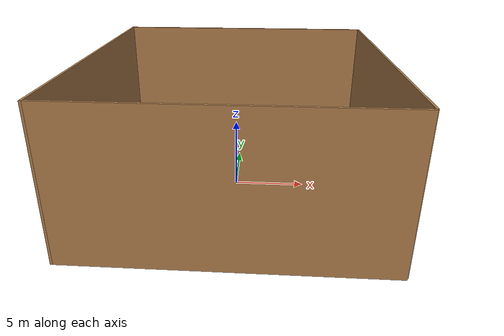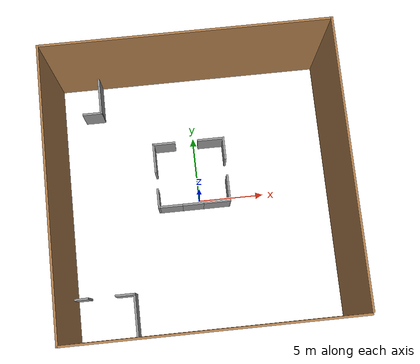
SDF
<?xml version='1.0'?>
<sdf version='1.7'>
  <model name='Untitled'>
    <pose>0.029093 0.021425 0 0 -0 0</pose>
    <link name='Wall_1'>
      <collision name='Wall_1_Collision'>
        <geometry>
          <box>
            <size>20.15 0.15 10</size>
          </box>
        </geometry>
        <pose>0 0 5 0 -0 0</pose>
      </collision>
      <visual name='Wall_1_Visual'>
        <pose>0 0 5 0 -0 0</pose>
        <geometry>
          <box>
            <size>20.15 0.15 10</size>
          </box>
        </geometry>
        <material>
          <script>
            <uri>file://media/materials/scripts/gazebo.material</uri>
            <name>Gazebo/Wood</name>
          </script>
          <ambient>0.996078 0.47451 0.0196078 1</ambient>
        </material>
        <meta>
          <layer>0</layer>
        </meta>
      </visual>
      <pose>-10.0291 -0.021425 0 0 -0 1.5708</pose>
    </link>
    <link name='Wall_10'>
      <collision name='Wall_10_Collision'>
        <geometry>
          <box>
            <size>1.5 0.15 2.5</size>
          </box>
        </geometry>
        <pose>0 0 1.25 0 -0 0</pose>
      </collision>
      <visual name='Wall_10_Visual'>
        <pose>0 0 1.25 0 -0 0</pose>
        <geometry>
          <box>
            <size>1.5 0.15 2.5</size>
          </box>
        </geometry>
        <material>
          <script>
            <uri>file://media/materials/scripts/gazebo.material</uri>
            <name>Gazebo/Grey</name>
          </script>
          <ambient>1 1 1 1</ambient>
        </material>
        <meta>
          <layer>0</layer>
        </meta>
      </visual>
      <pose>-7.55532 7.17143 0 0 -0 3.14159</pose>
    </link>
    <link name='Wall_13'>
      <collision name='Wall_13_Collision'>
        <geometry>
          <box>
            <size>1.25 0.15 2.5</size>
          </box>
        </geometry>
        <pose>0 0 1.25 0 -0 0</pose>
      </collision>
      <visual name='Wall_13_Visual'>
        <pose>0 0 1.25 0 -0 0</pose>
        <geometry>
          <box>
            <size>1.25 0.15 2.5</size>
          </box>
        </geometry>
        <material>
          <script>
            <uri>file://media/materials/scripts/gazebo.material</uri>
            <name>Gazebo/Grey</name>
          </script>
          <ambient>1 1 1 1</ambient>
        </material>
        <meta>
          <layer>0</layer>
        </meta>
      </visual>
      <pose>-9.52091 -6.81783 0 0 -0 0</pose>
    </link>
    <link name='Wall_15'>
      <collision name='Wall_15_Collision'>
        <geometry>
          <box>
            <size>1.5 0.15 2.5</size>
          </box>
        </geometry>
        <pose>0 0 1.25 0 -0 0</pose>
      </collision>
      <visual name='Wall_15_Visual'>
        <pose>0 0 1.25 0 -0 0</pose>
        <geometry>
          <box>
            <size>1.5 0.15 2.5</size>
          </box>
        </geometry>
        <material>
          <script>
            <uri>file://media/materials/scripts/gazebo.material</uri>
            <name>Gazebo/Grey</name>
          </script>
          <ambient>1 1 1 1</ambient>
        </material>
        <meta>
          <layer>0</layer>
        </meta>
      </visual>
      <pose>-6.19591 -6.81783 0 0 -0 0</pose>
    </link>
    <link name='Wall_16'>
      <collision name='Wall_16_Collision'>
        <geometry>
          <box>
            <size>3.25 0.15 2.5</size>
          </box>
        </geometry>
        <pose>0 0 1.25 0 -0 0</pose>
      </collision>
      <visual name='Wall_16_Visual'>
        <pose>0 0 1.25 0 -0 0</pose>
        <geometry>
          <box>
            <size>3.25 0.15 2.5</size>
          </box>
        </geometry>
        <material>
          <script>
            <uri>file://media/materials/scripts/gazebo.material</uri>
            <name>Gazebo/Grey</name>
          </script>
          <ambient>1 1 1 1</ambient>
        </material>
        <meta>
          <layer>0</layer>
        </meta>
      </visual>
      <pose>-5.52091 -8.36783 0 0 -0 -1.5708</pose>
    </link>
    <link name='Wall_26'>
      <collision name='Wall_26_Collision'>
        <geometry>
          <box>
            <size>2.25 0.15 2.5</size>
          </box>
        </geometry>
        <pose>0 0 1.25 0 -0 0</pose>
      </collision>
      <visual name='Wall_26_Visual'>
        <pose>0 0 1.25 0 -0 0</pose>
        <geometry>
          <box>
            <size>2.25 0.15 2.5</size>
          </box>
        </geometry>
        <material>
          <script>
            <uri>file://media/materials/scripts/gazebo.material</uri>
            <name>Gazebo/Grey</name>
          </script>
          <ambient>1 1 1 1</ambient>
        </material>
        <meta>
          <layer>0</layer>
        </meta>
      </visual>
      <pose>-3.11255 3.217 0 0 -0 -1.5708</pose>
    </link>
    <link name='Wall_28'>
      <collision name='Wall_28_Collision'>
        <geometry>
          <box>
            <size>1.5 0.15 2.5</size>
          </box>
        </geometry>
        <pose>0 0 1.25 0 -0 0</pose>
      </collision>
      <visual name='Wall_28_Visual'>
        <pose>0 0 1.25 0 -0 0</pose>
        <geometry>
          <box>
            <size>1.5 0.15 2.5</size>
          </box>
        </geometry>
        <material>
          <script>
            <uri>file://media/materials/scripts/gazebo.material</uri>
            <name>Gazebo/Grey</name>
          </script>
          <ambient>1 1 1 1</ambient>
        </material>
        <meta>
          <layer>0</layer>
        </meta>
      </visual>
      <pose>-3.11255 0.092003 0 0 -0 -1.5708</pose>
    </link>
    <link name='Wall_3'>
      <collision name='Wall_3_Collision'>
        <geometry>
          <box>
            <size>20.15 0.15 10</size>
          </box>
        </geometry>
        <pose>0 0 5 0 -0 0</pose>
      </collision>
      <visual name='Wall_3_Visual'>
        <pose>0 0 5 0 -0 0</pose>
        <geometry>
          <box>
            <size>20.15 0.15 10</size>
          </box>
        </geometry>
        <material>
          <script>
            <uri>file://media/materials/scripts/gazebo.material</uri>
            <name>Gazebo/Wood</name>
          </script>
          <ambient>0.921569 0.807843 0.615686 1</ambient>
        </material>
        <meta>
          <layer>0</layer>
        </meta>
      </visual>
      <pose>-0.029093 -10.0214 0 0 -0 0</pose>
    </link>
    <link name='Wall_30'>
      <collision name='Wall_30_Collision'>
        <geometry>
          <box>
            <size>2 0.15 2.5</size>
          </box>
        </geometry>
        <pose>0 0 1.25 0 -0 0</pose>
      </collision>
      <visual name='Wall_30_Visual'>
        <pose>0 0 1.25 0 -0 0</pose>
        <geometry>
          <box>
            <size>2 0.15 2.5</size>
          </box>
        </geometry>
        <material>
          <script>
            <uri>file://media/materials/scripts/gazebo.material</uri>
            <name>Gazebo/Grey</name>
          </script>
          <ambient>1 1 1 1</ambient>
        </material>
        <meta>
          <layer>0</layer>
        </meta>
      </visual>
      <pose>-2.18755 -0.582997 0 0 -0 0</pose>
    </link>
    <link name='Wall_31'>
      <collision name='Wall_31_Collision'>
        <geometry>
          <box>
            <size>1.75 0.15 2.5</size>
          </box>
        </geometry>
        <pose>0 0 1.25 0 -0 0</pose>
      </collision>
      <visual name='Wall_31_Visual'>
        <pose>0 0 1.25 0 -0 0</pose>
        <geometry>
          <box>
            <size>1.75 0.15 2.5</size>
          </box>
        </geometry>
        <material>
          <script>
            <uri>file://media/materials/scripts/gazebo.material</uri>
            <name>Gazebo/Grey</name>
          </script>
          <ambient>1 1 1 1</ambient>
        </material>
        <meta>
          <layer>0</layer>
        </meta>
      </visual>
      <pose>-0.462549 -0.582997 0 0 -0 0</pose>
    </link>
    <link name='Wall_32'>
      <collision name='Wall_32_Collision'>
        <geometry>
          <box>
            <size>2.05 0.15 2.5</size>
          </box>
        </geometry>
        <pose>0 0 1.25 0 -0 0</pose>
      </collision>
      <visual name='Wall_32_Visual'>
        <pose>0 0 1.25 0 -0 0</pose>
        <geometry>
          <box>
            <size>2.05 0.15 2.5</size>
          </box>
        </geometry>
        <material>
          <script>
            <uri>file://media/materials/scripts/gazebo.material</uri>
            <name>Gazebo/Grey</name>
          </script>
          <ambient>1 1 1 1</ambient>
        </material>
        <meta>
          <layer>0</layer>
        </meta>
      </visual>
      <pose>1.28745 -0.582997 0 0 -0 0</pose>
    </link>
    <link name='Wall_34'>
      <collision name='Wall_34_Collision'>
        <geometry>
          <box>
            <size>1.75 0.15 2.5</size>
          </box>
        </geometry>
        <pose>0 0 1.25 0 -0 0</pose>
      </collision>
      <visual name='Wall_34_Visual'>
        <pose>0 0 1.25 0 -0 0</pose>
        <geometry>
          <box>
            <size>1.75 0.15 2.5</size>
          </box>
        </geometry>
        <material>
          <script>
            <uri>file://media/materials/scripts/gazebo.material</uri>
            <name>Gazebo/Grey</name>
          </script>
          <ambient>1 1 1 1</ambient>
        </material>
        <meta>
          <layer>0</layer>
        </meta>
      </visual>
      <pose>-2.31255 4.267 0 0 -0 0</pose>
    </link>
    <link name='Wall_36'>
      <collision name='Wall_36_Collision'>
        <geometry>
          <box>
            <size>2.05 0.15 2.5</size>
          </box>
        </geometry>
        <pose>0 0 1.25 0 -0 0</pose>
      </collision>
      <visual name='Wall_36_Visual'>
        <pose>0 0 1.25 0 -0 0</pose>
        <geometry>
          <box>
            <size>2.05 0.15 2.5</size>
          </box>
        </geometry>
        <material>
          <script>
            <uri>file://media/materials/scripts/gazebo.material</uri>
            <name>Gazebo/Grey</name>
          </script>
          <ambient>1 1 1 1</ambient>
        </material>
        <meta>
          <layer>0</layer>
        </meta>
      </visual>
      <pose>1.28745 4.267 0 0 -0 0</pose>
    </link>
    <link name='Wall_38'>
      <collision name='Wall_38_Collision'>
        <geometry>
          <box>
            <size>1.75 0.15 2.5</size>
          </box>
        </geometry>
        <pose>0 0 1.25 0 -0 0</pose>
      </collision>
      <visual name='Wall_38_Visual'>
        <pose>0 0 1.25 0 -0 0</pose>
        <geometry>
          <box>
            <size>1.75 0.15 2.5</size>
          </box>
        </geometry>
        <material>
          <script>
            <uri>file://media/materials/scripts/gazebo.material</uri>
            <name>Gazebo/Grey</name>
          </script>
          <ambient>1 1 1 1</ambient>
        </material>
        <meta>
          <layer>0</layer>
        </meta>
      </visual>
      <pose>2.23745 3.467 0 0 -0 -1.5708</pose>
    </link>
    <link name='Wall_40'>
      <collision name='Wall_40_Collision'>
        <geometry>
          <box>
            <size>2.05 0.15 2.5</size>
          </box>
        </geometry>
        <pose>0 0 1.25 0 -0 0</pose>
      </collision>
      <visual name='Wall_40_Visual'>
        <pose>0 0 1.25 0 -0 0</pose>
        <geometry>
          <box>
            <size>2.05 0.15 2.5</size>
          </box>
        </geometry>
        <material>
          <script>
            <uri>file://media/materials/scripts/gazebo.material</uri>
            <name>Gazebo/Grey</name>
          </script>
          <ambient>1 1 1 1</ambient>
        </material>
        <meta>
          <layer>0</layer>
        </meta>
      </visual>
      <pose>2.23745 0.367003 0 0 -0 -1.5708</pose>
    </link>
    <link name='Wall_5'>
      <collision name='Wall_5_Collision'>
        <geometry>
          <box>
            <size>20.25 0.15 10</size>
          </box>
        </geometry>
        <pose>0 0 5 0 -0 0</pose>
      </collision>
      <visual name='Wall_5_Visual'>
        <pose>0 0 5 0 -0 0</pose>
        <geometry>
          <box>
            <size>20.25 0.15 10</size>
          </box>
        </geometry>
        <material>
          <script>
            <uri>file://media/materials/scripts/gazebo.material</uri>
            <name>Gazebo/Wood</name>
          </script>
          <ambient>1 1 1 1</ambient>
        </material>
        <meta>
          <layer>0</layer>
        </meta>
      </visual>
      <pose>0.020907 9.97857 0 0 -0 0</pose>
    </link>
    <link name='Wall_6'>
      <collision name='Wall_6_Collision'>
        <geometry>
          <box>
            <size>20 0.15 10</size>
          </box>
        </geometry>
        <pose>0 0 5 0 -0 0</pose>
      </collision>
      <visual name='Wall_6_Visual'>
        <pose>0 0 5 0 -0 0</pose>
        <geometry>
          <box>
            <size>20 0.15 10</size>
          </box>
        </geometry>
        <material>
          <script>
            <uri>file://media/materials/scripts/gazebo.material</uri>
            <name>Gazebo/Wood</name>
          </script>
          <ambient>1 0.764706 0.305882 1</ambient>
        </material>
        <meta>
          <layer>0</layer>
        </meta>
      </visual>
      <pose>10.0709 0.053575 0 0 -0 -1.5708</pose>
    </link>
    <link name='Wall_7'>
      <collision name='Wall_7_Collision'>
        <geometry>
          <box>
            <size>0.15 0.15 2.5</size>
          </box>
        </geometry>
        <pose>0 0 1.25 0 -0 0</pose>
      </collision>
      <visual name='Wall_7_Visual'>
        <pose>0 0 1.25 0 -0 0</pose>
        <geometry>
          <box>
            <size>0.15 0.15 2.5</size>
          </box>
        </geometry>
        <material>
          <script>
            <uri>file://media/materials/scripts/gazebo.material</uri>
            <name>Gazebo/Grey</name>
          </script>
          <ambient>1 1 1 1</ambient>
        </material>
        <meta>
          <layer>0</layer>
        </meta>
      </visual>
      <pose>10.0709 -9.87143 0 0 -0 0</pose>
    </link>
    <link name='Wall_9'>
      <collision name='Wall_9_Collision'>
        <geometry>
          <box>
            <size>3 0.15 2.5</size>
          </box>
        </geometry>
        <pose>0 0 1.25 0 -0 0</pose>
      </collision>
      <visual name='Wall_9_Visual'>
        <pose>0 0 1.25 0 -0 0</pose>
        <geometry>
          <box>
            <size>3 0.15 2.5</size>
          </box>
        </geometry>
        <material>
          <script>
            <uri>file://media/materials/scripts/gazebo.material</uri>
            <name>Gazebo/Grey</name>
          </script>
          <ambient>1 1 1 1</ambient>
        </material>
        <meta>
          <layer>0</layer>
        </meta>
      </visual>
      <pose>-6.88032 8.59643 0 0 -0 -1.5708</pose>
    </link>
    <static>1</static>
  </model>
</sdf>
